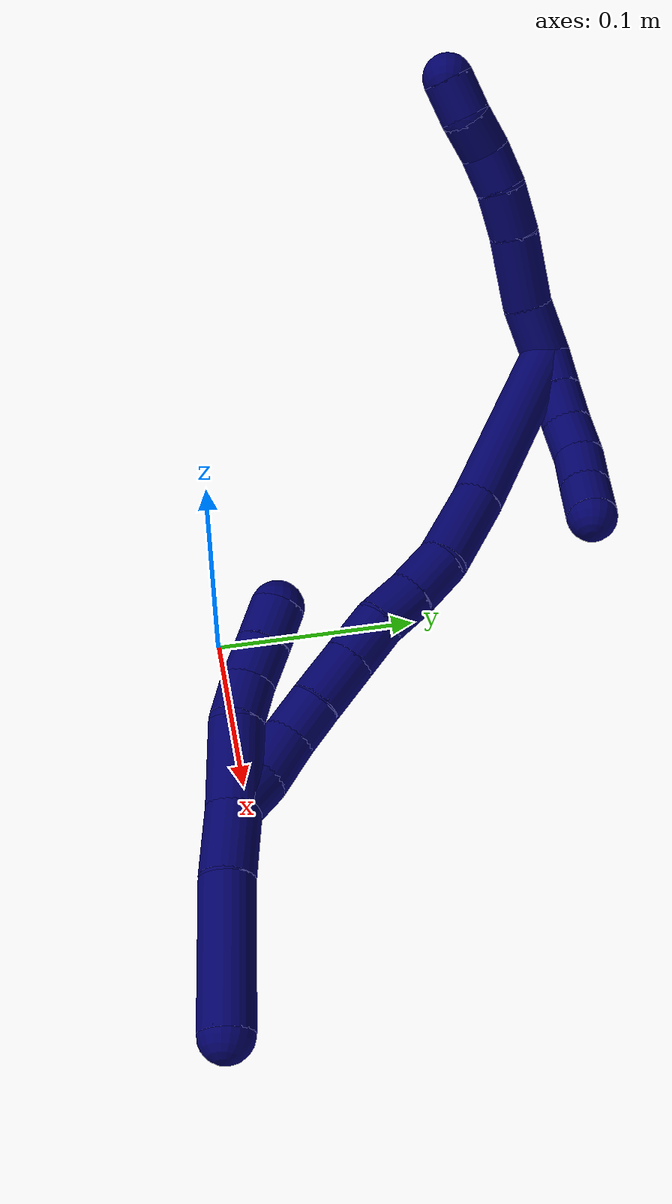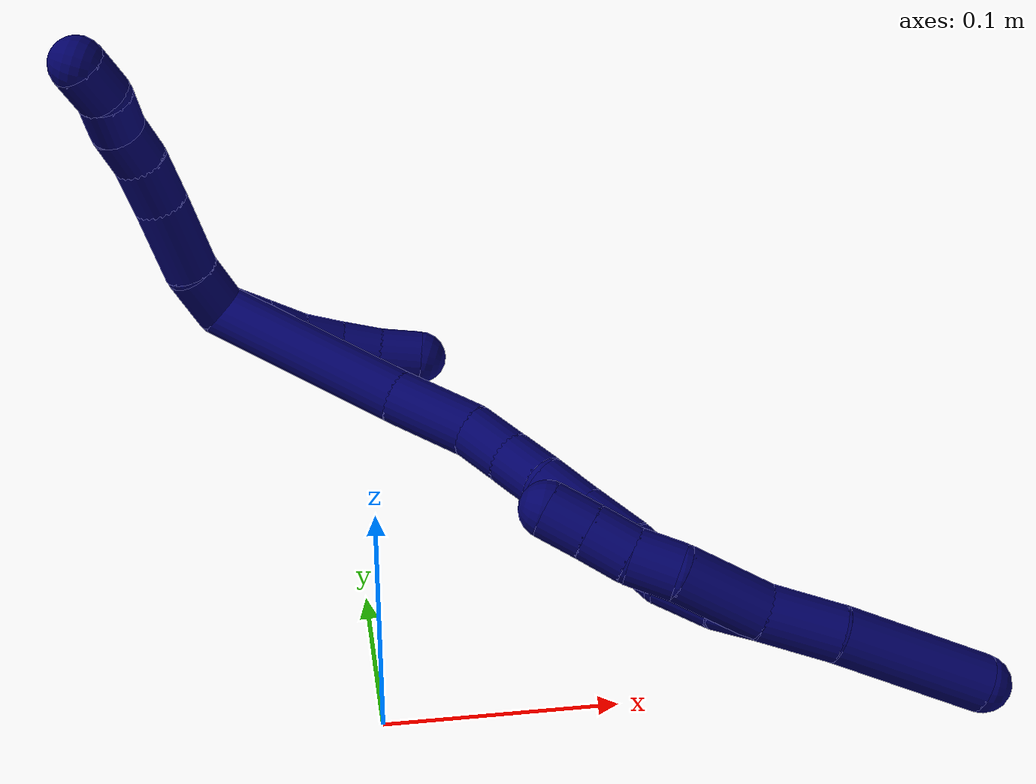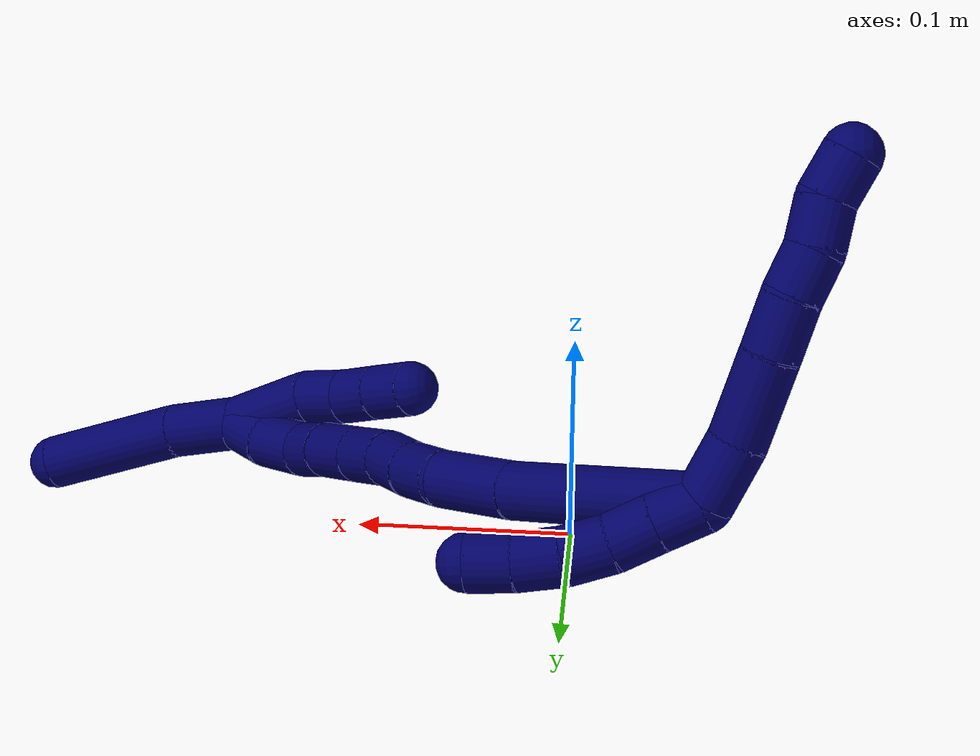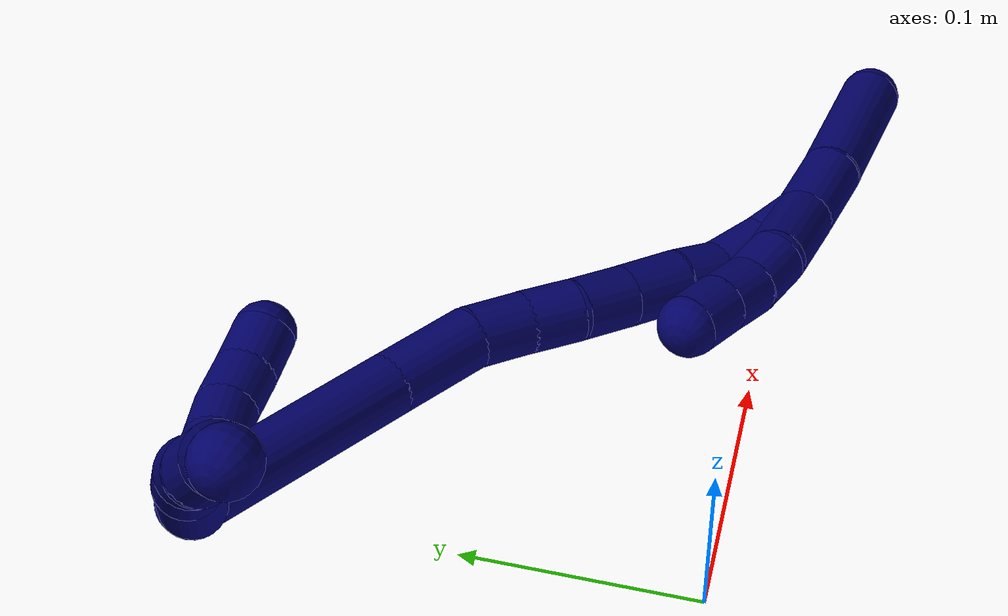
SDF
<sdf version="1.7">
 <world name="default">
  <model name="7">
   <static>0</static>
   <link name="7">
    <collision name="collision-cylinder-e_1_2_8">
     <pose>0.009713 0.005744 0.00833 -0.603705 0.764953 -0.24922</pose>
     <geometry><cylinder><radius>0.0125</radius><length>0.028051</length></cylinder></geometry>
     <surface>
      <friction><ode><mu>1.16</mu><mu2>1.16</mu2><slip1>0</slip1><slip2>0</slip2></ode></friction>
      <contact><ode><kp>1e+06</kp><kd>1</kd><max_vel>0</max_vel><min_depth>0.001</min_depth></ode></contact>
     </surface>
    </collision>
    <visual name="visual-cylinder-e_1_2_8">
     <pose>0.009713 0.005744 0.00833 -0.603705 0.764953 -0.24922</pose>
     <geometry><cylinder><radius>0.0125</radius><length>0.028051</length></cylinder></geometry>
     <material><ambient>0.003922 0 0.403922 1</ambient></material>
    </visual>
    <collision name="collision-cylinder-e_2_8_9">
     <pose>0.0312 0.022656 0.026138 -0.867028 0.677076 -0.323113</pose>
     <geometry><cylinder><radius>0.0125</radius><length>0.037589</length></cylinder></geometry>
     <surface>
      <friction><ode><mu>1.16</mu><mu2>1.16</mu2><slip1>0</slip1><slip2>0</slip2></ode></friction>
      <contact><ode><kp>1e+06</kp><kd>1</kd><max_vel>0</max_vel><min_depth>0.001</min_depth></ode></contact>
     </surface>
    </collision>
    <visual name="visual-cylinder-e_2_8_9">
     <pose>0.0312 0.022656 0.026138 -0.867028 0.677076 -0.323113</pose>
     <geometry><cylinder><radius>0.0125</radius><length>0.037589</length></cylinder></geometry>
     <material><ambient>0.003922 0 0.403922 1</ambient></material>
    </visual>
    <collision name="collision-cylinder-e_3_9_10">
     <pose>0.051324 0.040353 0.041458 -0.840909 0.761336 -0.354115</pose>
     <geometry><cylinder><radius>0.0125</radius><length>0.024201</length></cylinder></geometry>
     <surface>
      <friction><ode><mu>1.16</mu><mu2>1.16</mu2><slip1>0</slip1><slip2>0</slip2></ode></friction>
      <contact><ode><kp>1e+06</kp><kd>1</kd><max_vel>0</max_vel><min_depth>0.001</min_depth></ode></contact>
     </surface>
    </collision>
    <visual name="visual-cylinder-e_3_9_10">
     <pose>0.051324 0.040353 0.041458 -0.840909 0.761336 -0.354115</pose>
     <geometry><cylinder><radius>0.0125</radius><length>0.024201</length></cylinder></geometry>
     <material><ambient>0.003922 0 0.403922 1</ambient></material>
    </visual>
    <collision name="collision-cylinder-e_4_10_11">
     <pose>0.067202 0.050828 0.052674 -0.633346 0.84604 -0.292949</pose>
     <geometry><cylinder><radius>0.0125</radius><length>0.020117</length></cylinder></geometry>
     <surface>
      <friction><ode><mu>1.16</mu><mu2>1.16</mu2><slip1>0</slip1><slip2>0</slip2></ode></friction>
      <contact><ode><kp>1e+06</kp><kd>1</kd><max_vel>0</max_vel><min_depth>0.001</min_depth></ode></contact>
     </surface>
    </collision>
    <visual name="visual-cylinder-e_4_10_11">
     <pose>0.067202 0.050828 0.052674 -0.633346 0.84604 -0.292949</pose>
     <geometry><cylinder><radius>0.0125</radius><length>0.020117</length></cylinder></geometry>
     <material><ambient>0.003922 0 0.403922 1</ambient></material>
    </visual>
    <collision name="collision-cylinder-e_5_11_12">
     <pose>0.083192 0.05909 0.061209 -0.938822 1.00699 -0.54491</pose>
     <geometry><cylinder><radius>0.0125</radius><length>0.020017</length></cylinder></geometry>
     <surface>
      <friction><ode><mu>1.16</mu><mu2>1.16</mu2><slip1>0</slip1><slip2>0</slip2></ode></friction>
      <contact><ode><kp>1e+06</kp><kd>1</kd><max_vel>0</max_vel><min_depth>0.001</min_depth></ode></contact>
     </surface>
    </collision>
    <visual name="visual-cylinder-e_5_11_12">
     <pose>0.083192 0.05909 0.061209 -0.938822 1.00699 -0.54491</pose>
     <geometry><cylinder><radius>0.0125</radius><length>0.020017</length></cylinder></geometry>
     <material><ambient>0.003922 0 0.403922 1</ambient></material>
    </visual>
    <collision name="collision-cylinder-e_6_12_6">
     <pose>0.099051 0.066744 0.070229 -0.517821 0.831656 -0.232851</pose>
     <geometry><cylinder><radius>0.0125</radius><length>0.020025</length></cylinder></geometry>
     <surface>
      <friction><ode><mu>1.16</mu><mu2>1.16</mu2><slip1>0</slip1><slip2>0</slip2></ode></friction>
      <contact><ode><kp>1e+06</kp><kd>1</kd><max_vel>0</max_vel><min_depth>0.001</min_depth></ode></contact>
     </surface>
    </collision>
    <visual name="visual-cylinder-e_6_12_6">
     <pose>0.099051 0.066744 0.070229 -0.517821 0.831656 -0.232851</pose>
     <geometry><cylinder><radius>0.0125</radius><length>0.020025</length></cylinder></geometry>
     <material><ambient>0.003922 0 0.403922 1</ambient></material>
    </visual>
    <collision name="collision-cylinder-e_1_2_13">
     <pose>-0.003244 -0.000316 -0.009454 3.10821 -0.3304 -2.942</pose>
     <geometry><cylinder><radius>0.0125</radius><length>0.02</length></cylinder></geometry>
     <surface>
      <friction><ode><mu>1.16</mu><mu2>1.16</mu2><slip1>0</slip1><slip2>0</slip2></ode></friction>
      <contact><ode><kp>1e+06</kp><kd>1</kd><max_vel>0</max_vel><min_depth>0.001</min_depth></ode></contact>
     </surface>
    </collision>
    <visual name="visual-cylinder-e_1_2_13">
     <pose>-0.003244 -0.000316 -0.009454 3.10821 -0.3304 -2.942</pose>
     <geometry><cylinder><radius>0.0125</radius><length>0.02</length></cylinder></geometry>
     <material><ambient>0.003922 0 0.403922 1</ambient></material>
    </visual>
    <collision name="collision-cylinder-e_2_13_14">
     <pose>-0.009949 -0.000967 -0.028284 3.1058 -0.353373 -2.94175</pose>
     <geometry><cylinder><radius>0.0125</radius><length>0.02</length></cylinder></geometry>
     <surface>
      <friction><ode><mu>1.16</mu><mu2>1.16</mu2><slip1>0</slip1><slip2>0</slip2></ode></friction>
      <contact><ode><kp>1e+06</kp><kd>1</kd><max_vel>0</max_vel><min_depth>0.001</min_depth></ode></contact>
     </surface>
    </collision>
    <visual name="visual-cylinder-e_2_13_14">
     <pose>-0.009949 -0.000967 -0.028284 3.1058 -0.353373 -2.94175</pose>
     <geometry><cylinder><radius>0.0125</radius><length>0.02</length></cylinder></geometry>
     <material><ambient>0.003922 0 0.403922 1</ambient></material>
    </visual>
    <collision name="collision-cylinder-e_3_14_15">
     <pose>-0.016045 -0.000183 -0.047241 -3.02519 -0.266659 2.32197</pose>
     <geometry><cylinder><radius>0.0125</radius><length>0.02</length></cylinder></geometry>
     <surface>
      <friction><ode><mu>1.16</mu><mu2>1.16</mu2><slip1>0</slip1><slip2>0</slip2></ode></friction>
      <contact><ode><kp>1e+06</kp><kd>1</kd><max_vel>0</max_vel><min_depth>0.001</min_depth></ode></contact>
     </surface>
    </collision>
    <visual name="visual-cylinder-e_3_14_15">
     <pose>-0.016045 -0.000183 -0.047241 -3.02519 -0.266659 2.32197</pose>
     <geometry><cylinder><radius>0.0125</radius><length>0.02</length></cylinder></geometry>
     <material><ambient>0.003922 0 0.403922 1</ambient></material>
    </visual>
    <collision name="collision-cylinder-e_4_15_16">
     <pose>-0.019554 0.002155 -0.06671 -3.01911 -0.087515 1.24019</pose>
     <geometry><cylinder><radius>0.0125</radius><length>0.02</length></cylinder></geometry>
     <surface>
      <friction><ode><mu>1.16</mu><mu2>1.16</mu2><slip1>0</slip1><slip2>0</slip2></ode></friction>
      <contact><ode><kp>1e+06</kp><kd>1</kd><max_vel>0</max_vel><min_depth>0.001</min_depth></ode></contact>
     </surface>
    </collision>
    <visual name="visual-cylinder-e_4_15_16">
     <pose>-0.019554 0.002155 -0.06671 -3.01911 -0.087515 1.24019</pose>
     <geometry><cylinder><radius>0.0125</radius><length>0.02</length></cylinder></geometry>
     <material><ambient>0.003922 0 0.403922 1</ambient></material>
    </visual>
    <collision name="collision-cylinder-e_5_16_5">
     <pose>-0.020685 0.005523 -0.086359 -2.92476 -0.02575 0.235493</pose>
     <geometry><cylinder><radius>0.0125</radius><length>0.02</length></cylinder></geometry>
     <surface>
      <friction><ode><mu>1.16</mu><mu2>1.16</mu2><slip1>0</slip1><slip2>0</slip2></ode></friction>
      <contact><ode><kp>1e+06</kp><kd>1</kd><max_vel>0</max_vel><min_depth>0.001</min_depth></ode></contact>
     </surface>
    </collision>
    <visual name="visual-cylinder-e_5_16_5">
     <pose>-0.020685 0.005523 -0.086359 -2.92476 -0.02575 0.235493</pose>
     <geometry><cylinder><radius>0.0125</radius><length>0.02</length></cylinder></geometry>
     <material><ambient>0.003922 0 0.403922 1</ambient></material>
    </visual>
    <collision name="collision-cylinder-e_1_2_17">
     <pose>0.014129 -0.009377 -0.045794 2.93963 0.293528 1.93981</pose>
     <geometry><cylinder><radius>0.0125</radius><length>0.097665</length></cylinder></geometry>
     <surface>
      <friction><ode><mu>1.16</mu><mu2>1.16</mu2><slip1>0</slip1><slip2>0</slip2></ode></friction>
      <contact><ode><kp>1e+06</kp><kd>1</kd><max_vel>0</max_vel><min_depth>0.001</min_depth></ode></contact>
     </surface>
    </collision>
    <visual name="visual-cylinder-e_1_2_17">
     <pose>0.014129 -0.009377 -0.045794 2.93963 0.293528 1.93981</pose>
     <geometry><cylinder><radius>0.0125</radius><length>0.097665</length></cylinder></geometry>
     <material><ambient>0.003922 0 0.403922 1</ambient></material>
    </visual>
    <collision name="collision-cylinder-e_2_17_18">
     <pose>0.035503 -0.022073 -0.110095 2.96408 0.367812 2.24913</pose>
     <geometry><cylinder><radius>0.0125</radius><length>0.0403</length></cylinder></geometry>
     <surface>
      <friction><ode><mu>1.16</mu><mu2>1.16</mu2><slip1>0</slip1><slip2>0</slip2></ode></friction>
      <contact><ode><kp>1e+06</kp><kd>1</kd><max_vel>0</max_vel><min_depth>0.001</min_depth></ode></contact>
     </surface>
    </collision>
    <visual name="visual-cylinder-e_2_17_18">
     <pose>0.035503 -0.022073 -0.110095 2.96408 0.367812 2.24913</pose>
     <geometry><cylinder><radius>0.0125</radius><length>0.0403</length></cylinder></geometry>
     <material><ambient>0.003922 0 0.403922 1</ambient></material>
    </visual>
    <collision name="collision-cylinder-e_3_18_19">
     <pose>0.048623 -0.029386 -0.138161 2.74593 0.515793 1.84192</pose>
     <geometry><cylinder><radius>0.0125</radius><length>0.023819</length></cylinder></geometry>
     <surface>
      <friction><ode><mu>1.16</mu><mu2>1.16</mu2><slip1>0</slip1><slip2>0</slip2></ode></friction>
      <contact><ode><kp>1e+06</kp><kd>1</kd><max_vel>0</max_vel><min_depth>0.001</min_depth></ode></contact>
     </surface>
    </collision>
    <visual name="visual-cylinder-e_3_18_19">
     <pose>0.048623 -0.029386 -0.138161 2.74593 0.515793 1.84192</pose>
     <geometry><cylinder><radius>0.0125</radius><length>0.023819</length></cylinder></geometry>
     <material><ambient>0.003922 0 0.403922 1</ambient></material>
    </visual>
    <collision name="collision-cylinder-e_4_19_20">
     <pose>0.060713 -0.036937 -0.15589 2.73086 0.60918 1.97124</pose>
     <geometry><cylinder><radius>0.0125</radius><length>0.02173</length></cylinder></geometry>
     <surface>
      <friction><ode><mu>1.16</mu><mu2>1.16</mu2><slip1>0</slip1><slip2>0</slip2></ode></friction>
      <contact><ode><kp>1e+06</kp><kd>1</kd><max_vel>0</max_vel><min_depth>0.001</min_depth></ode></contact>
     </surface>
    </collision>
    <visual name="visual-cylinder-e_4_19_20">
     <pose>0.060713 -0.036937 -0.15589 2.73086 0.60918 1.97124</pose>
     <geometry><cylinder><radius>0.0125</radius><length>0.02173</length></cylinder></geometry>
     <material><ambient>0.003922 0 0.403922 1</ambient></material>
    </visual>
    <collision name="collision-cylinder-e_5_20_21">
     <pose>0.071829 -0.044786 -0.173873 2.72937 0.428981 1.61183</pose>
     <geometry><cylinder><radius>0.0125</radius><length>0.023557</length></cylinder></geometry>
     <surface>
      <friction><ode><mu>1.16</mu><mu2>1.16</mu2><slip1>0</slip1><slip2>0</slip2></ode></friction>
      <contact><ode><kp>1e+06</kp><kd>1</kd><max_vel>0</max_vel><min_depth>0.001</min_depth></ode></contact>
     </surface>
    </collision>
    <visual name="visual-cylinder-e_5_20_21">
     <pose>0.071829 -0.044786 -0.173873 2.72937 0.428981 1.61183</pose>
     <geometry><cylinder><radius>0.0125</radius><length>0.023557</length></cylinder></geometry>
     <material><ambient>0.003922 0 0.403922 1</ambient></material>
    </visual>
    <collision name="collision-cylinder-e_6_21_22">
     <pose>0.082225 -0.053582 -0.194656 2.75196 0.43404 1.6816</pose>
     <geometry><cylinder><radius>0.0125</radius><length>0.026139</length></cylinder></geometry>
     <surface>
      <friction><ode><mu>1.16</mu><mu2>1.16</mu2><slip1>0</slip1><slip2>0</slip2></ode></friction>
      <contact><ode><kp>1e+06</kp><kd>1</kd><max_vel>0</max_vel><min_depth>0.001</min_depth></ode></contact>
     </surface>
    </collision>
    <visual name="visual-cylinder-e_6_21_22">
     <pose>0.082225 -0.053582 -0.194656 2.75196 0.43404 1.6816</pose>
     <geometry><cylinder><radius>0.0125</radius><length>0.026139</length></cylinder></geometry>
     <material><ambient>0.003922 0 0.403922 1</ambient></material>
    </visual>
    <collision name="collision-cylinder-e_7_22_23">
     <pose>0.091563 -0.062415 -0.214019 2.66544 0.38635 1.35685</pose>
     <geometry><cylinder><radius>0.0125</radius><length>0.020394</length></cylinder></geometry>
     <surface>
      <friction><ode><mu>1.16</mu><mu2>1.16</mu2><slip1>0</slip1><slip2>0</slip2></ode></friction>
      <contact><ode><kp>1e+06</kp><kd>1</kd><max_vel>0</max_vel><min_depth>0.001</min_depth></ode></contact>
     </surface>
    </collision>
    <visual name="visual-cylinder-e_7_22_23">
     <pose>0.091563 -0.062415 -0.214019 2.66544 0.38635 1.35685</pose>
     <geometry><cylinder><radius>0.0125</radius><length>0.020394</length></cylinder></geometry>
     <material><ambient>0.003922 0 0.403922 1</ambient></material>
    </visual>
    <collision name="collision-cylinder-e_8_23_24">
     <pose>0.100643 -0.068629 -0.233874 2.97858 0.423694 2.41565</pose>
     <geometry><cylinder><radius>0.0125</radius><length>0.025481</length></cylinder></geometry>
     <surface>
      <friction><ode><mu>1.16</mu><mu2>1.16</mu2><slip1>0</slip1><slip2>0</slip2></ode></friction>
      <contact><ode><kp>1e+06</kp><kd>1</kd><max_vel>0</max_vel><min_depth>0.001</min_depth></ode></contact>
     </surface>
    </collision>
    <visual name="visual-cylinder-e_8_23_24">
     <pose>0.100643 -0.068629 -0.233874 2.97858 0.423694 2.41565</pose>
     <geometry><cylinder><radius>0.0125</radius><length>0.025481</length></cylinder></geometry>
     <material><ambient>0.003922 0 0.403922 1</ambient></material>
    </visual>
    <collision name="collision-cylinder-e_9_24_1">
     <pose>0.111738 -0.070329 -0.253996 -3.12021 0.594416 -3.07179</pose>
     <geometry><cylinder><radius>0.0125</radius><length>0.020916</length></cylinder></geometry>
     <surface>
      <friction><ode><mu>1.16</mu><mu2>1.16</mu2><slip1>0</slip1><slip2>0</slip2></ode></friction>
      <contact><ode><kp>1e+06</kp><kd>1</kd><max_vel>0</max_vel><min_depth>0.001</min_depth></ode></contact>
     </surface>
    </collision>
    <visual name="visual-cylinder-e_9_24_1">
     <pose>0.111738 -0.070329 -0.253996 -3.12021 0.594416 -3.07179</pose>
     <geometry><cylinder><radius>0.0125</radius><length>0.020916</length></cylinder></geometry>
     <material><ambient>0.003922 0 0.403922 1</ambient></material>
    </visual>
    <collision name="collision-cylinder-e_1_1_25">
     <pose>0.12026 -0.067253 -0.243342 -0.148521 0.135605 -0.010104</pose>
     <geometry><cylinder><radius>0.0125</radius><length>0.039425</length></cylinder></geometry>
     <surface>
      <friction><ode><mu>1.16</mu><mu2>1.16</mu2><slip1>0</slip1><slip2>0</slip2></ode></friction>
      <contact><ode><kp>1e+06</kp><kd>1</kd><max_vel>0</max_vel><min_depth>0.001</min_depth></ode></contact>
     </surface>
    </collision>
    <visual name="visual-cylinder-e_1_1_25">
     <pose>0.12026 -0.067253 -0.243342 -0.148521 0.135605 -0.010104</pose>
     <geometry><cylinder><radius>0.0125</radius><length>0.039425</length></cylinder></geometry>
     <material><ambient>0.003922 0 0.403922 1</ambient></material>
    </visual>
    <collision name="collision-cylinder-e_2_25_26">
     <pose>0.121315 -0.063723 -0.213911 -0.063189 -0.157528 0.004989</pose>
     <geometry><cylinder><radius>0.0125</radius><length>0.020523</length></cylinder></geometry>
     <surface>
      <friction><ode><mu>1.16</mu><mu2>1.16</mu2><slip1>0</slip1><slip2>0</slip2></ode></friction>
      <contact><ode><kp>1e+06</kp><kd>1</kd><max_vel>0</max_vel><min_depth>0.001</min_depth></ode></contact>
     </surface>
    </collision>
    <visual name="visual-cylinder-e_2_25_26">
     <pose>0.121315 -0.063723 -0.213911 -0.063189 -0.157528 0.004989</pose>
     <geometry><cylinder><radius>0.0125</radius><length>0.020523</length></cylinder></geometry>
     <material><ambient>0.003922 0 0.403922 1</ambient></material>
    </visual>
    <collision name="collision-cylinder-e_3_26_27">
     <pose>0.117939 -0.060716 -0.194226 -0.242445 -0.177253 0.021649</pose>
     <geometry><cylinder><radius>0.0125</radius><length>0.020033</length></cylinder></geometry>
     <surface>
      <friction><ode><mu>1.16</mu><mu2>1.16</mu2><slip1>0</slip1><slip2>0</slip2></ode></friction>
      <contact><ode><kp>1e+06</kp><kd>1</kd><max_vel>0</max_vel><min_depth>0.001</min_depth></ode></contact>
     </surface>
    </collision>
    <visual name="visual-cylinder-e_3_26_27">
     <pose>0.117939 -0.060716 -0.194226 -0.242445 -0.177253 0.021649</pose>
     <geometry><cylinder><radius>0.0125</radius><length>0.020033</length></cylinder></geometry>
     <material><ambient>0.003922 0 0.403922 1</ambient></material>
    </visual>
    <collision name="collision-cylinder-e_4_27_4">
     <pose>0.114455 -0.056205 -0.175029 -0.219162 -0.172511 0.019027</pose>
     <geometry><cylinder><radius>0.0125</radius><length>0.020019</length></cylinder></geometry>
     <surface>
      <friction><ode><mu>1.16</mu><mu2>1.16</mu2><slip1>0</slip1><slip2>0</slip2></ode></friction>
      <contact><ode><kp>1e+06</kp><kd>1</kd><max_vel>0</max_vel><min_depth>0.001</min_depth></ode></contact>
     </surface>
    </collision>
    <visual name="visual-cylinder-e_4_27_4">
     <pose>0.114455 -0.056205 -0.175029 -0.219162 -0.172511 0.019027</pose>
     <geometry><cylinder><radius>0.0125</radius><length>0.020019</length></cylinder></geometry>
     <material><ambient>0.003922 0 0.403922 1</ambient></material>
    </visual>
    <collision name="collision-cylinder-e_1_1_28">
     <pose>0.117661 -0.070102 -0.279371 -3.13914 0.003976 -2.03593</pose>
     <geometry><cylinder><radius>0.0125</radius><length>0.033427</length></cylinder></geometry>
     <surface>
      <friction><ode><mu>1.16</mu><mu2>1.16</mu2><slip1>0</slip1><slip2>0</slip2></ode></friction>
      <contact><ode><kp>1e+06</kp><kd>1</kd><max_vel>0</max_vel><min_depth>0.001</min_depth></ode></contact>
     </surface>
    </collision>
    <visual name="visual-cylinder-e_1_1_28">
     <pose>0.117661 -0.070102 -0.279371 -3.13914 0.003976 -2.03593</pose>
     <geometry><cylinder><radius>0.0125</radius><length>0.033427</length></cylinder></geometry>
     <material><ambient>0.003922 0 0.403922 1</ambient></material>
    </visual>
    <collision name="collision-cylinder-e_2_28_3">
     <pose>0.114033 -0.071448 -0.329136 3.09966 -0.111227 -2.42108</pose>
     <geometry><cylinder><radius>0.0125</radius><length>0.066573</length></cylinder></geometry>
     <surface>
      <friction><ode><mu>1.16</mu><mu2>1.16</mu2><slip1>0</slip1><slip2>0</slip2></ode></friction>
      <contact><ode><kp>1e+06</kp><kd>1</kd><max_vel>0</max_vel><min_depth>0.001</min_depth></ode></contact>
     </surface>
    </collision>
    <visual name="visual-cylinder-e_2_28_3">
     <pose>0.114033 -0.071448 -0.329136 3.09966 -0.111227 -2.42108</pose>
     <geometry><cylinder><radius>0.0125</radius><length>0.066573</length></cylinder></geometry>
     <material><ambient>0.003922 0 0.403922 1</ambient></material>
    </visual>
    <collision name="collision-sphere-3">
     <pose>0.110338 -0.072835 -0.362188 0 -0 0</pose>
     <geometry><sphere><radius>0.0125</radius></sphere></geometry>
     <surface>
      <friction><ode><mu>1.16</mu><mu2>1.16</mu2><slip1>0</slip1><slip2>0</slip2></ode></friction>
      <contact><ode><kp>1e+06</kp><kd>1</kd><max_vel>0</max_vel><min_depth>0.001</min_depth></ode></contact>
     </surface>
    </collision>
    <visual name="visual-sphere-3">
     <pose>0.110338 -0.072835 -0.362188 0 -0 0</pose>
     <geometry><sphere><radius>0.0125</radius></sphere></geometry>
     <material><ambient>0.003922 0 0.403922 1</ambient></material>
    </visual>
    <collision name="collision-sphere-28">
     <pose>0.117728 -0.070061 -0.296085 0 -0 0</pose>
     <geometry><sphere><radius>0.0125</radius></sphere></geometry>
     <surface>
      <friction><ode><mu>1.16</mu><mu2>1.16</mu2><slip1>0</slip1><slip2>0</slip2></ode></friction>
      <contact><ode><kp>1e+06</kp><kd>1</kd><max_vel>0</max_vel><min_depth>0.001</min_depth></ode></contact>
     </surface>
    </collision>
    <visual name="visual-sphere-28">
     <pose>0.117728 -0.070061 -0.296085 0 -0 0</pose>
     <geometry><sphere><radius>0.0125</radius></sphere></geometry>
     <material><ambient>0.003922 0 0.403922 1</ambient></material>
    </visual>
    <collision name="collision-sphere-4">
     <pose>0.112737 -0.054061 -0.165404 0 -0 0</pose>
     <geometry><sphere><radius>0.0125</radius></sphere></geometry>
     <surface>
      <friction><ode><mu>1.16</mu><mu2>1.16</mu2><slip1>0</slip1><slip2>0</slip2></ode></friction>
      <contact><ode><kp>1e+06</kp><kd>1</kd><max_vel>0</max_vel><min_depth>0.001</min_depth></ode></contact>
     </surface>
    </collision>
    <visual name="visual-sphere-4">
     <pose>0.112737 -0.054061 -0.165404 0 -0 0</pose>
     <geometry><sphere><radius>0.0125</radius></sphere></geometry>
     <material><ambient>0.003922 0 0.403922 1</ambient></material>
    </visual>
    <collision name="collision-sphere-27">
     <pose>0.116173 -0.058349 -0.184654 0 -0 0</pose>
     <geometry><sphere><radius>0.0125</radius></sphere></geometry>
     <surface>
      <friction><ode><mu>1.16</mu><mu2>1.16</mu2><slip1>0</slip1><slip2>0</slip2></ode></friction>
      <contact><ode><kp>1e+06</kp><kd>1</kd><max_vel>0</max_vel><min_depth>0.001</min_depth></ode></contact>
     </surface>
    </collision>
    <visual name="visual-sphere-27">
     <pose>0.116173 -0.058349 -0.184654 0 -0 0</pose>
     <geometry><sphere><radius>0.0125</radius></sphere></geometry>
     <material><ambient>0.003922 0 0.403922 1</ambient></material>
    </visual>
    <collision name="collision-sphere-26">
     <pose>0.119705 -0.063083 -0.203797 0 -0 0</pose>
     <geometry><sphere><radius>0.0125</radius></sphere></geometry>
     <surface>
      <friction><ode><mu>1.16</mu><mu2>1.16</mu2><slip1>0</slip1><slip2>0</slip2></ode></friction>
      <contact><ode><kp>1e+06</kp><kd>1</kd><max_vel>0</max_vel><min_depth>0.001</min_depth></ode></contact>
     </surface>
    </collision>
    <visual name="visual-sphere-26">
     <pose>0.119705 -0.063083 -0.203797 0 -0 0</pose>
     <geometry><sphere><radius>0.0125</radius></sphere></geometry>
     <material><ambient>0.003922 0 0.403922 1</ambient></material>
    </visual>
    <collision name="collision-sphere-25">
     <pose>0.122925 -0.064363 -0.224025 0 -0 0</pose>
     <geometry><sphere><radius>0.0125</radius></sphere></geometry>
     <surface>
      <friction><ode><mu>1.16</mu><mu2>1.16</mu2><slip1>0</slip1><slip2>0</slip2></ode></friction>
      <contact><ode><kp>1e+06</kp><kd>1</kd><max_vel>0</max_vel><min_depth>0.001</min_depth></ode></contact>
     </surface>
    </collision>
    <visual name="visual-sphere-25">
     <pose>0.122925 -0.064363 -0.224025 0 -0 0</pose>
     <geometry><sphere><radius>0.0125</radius></sphere></geometry>
     <material><ambient>0.003922 0 0.403922 1</ambient></material>
    </visual>
    <collision name="collision-sphere-1">
     <pose>0.117595 -0.070143 -0.262658 0 -0 0</pose>
     <geometry><sphere><radius>0.0125</radius></sphere></geometry>
     <surface>
      <friction><ode><mu>1.16</mu><mu2>1.16</mu2><slip1>0</slip1><slip2>0</slip2></ode></friction>
      <contact><ode><kp>1e+06</kp><kd>1</kd><max_vel>0</max_vel><min_depth>0.001</min_depth></ode></contact>
     </surface>
    </collision>
    <visual name="visual-sphere-1">
     <pose>0.117595 -0.070143 -0.262658 0 -0 0</pose>
     <geometry><sphere><radius>0.0125</radius></sphere></geometry>
     <material><ambient>0.003922 0 0.403922 1</ambient></material>
    </visual>
    <collision name="collision-sphere-24">
     <pose>0.105881 -0.070514 -0.245334 0 -0 0</pose>
     <geometry><sphere><radius>0.0125</radius></sphere></geometry>
     <surface>
      <friction><ode><mu>1.16</mu><mu2>1.16</mu2><slip1>0</slip1><slip2>0</slip2></ode></friction>
      <contact><ode><kp>1e+06</kp><kd>1</kd><max_vel>0</max_vel><min_depth>0.001</min_depth></ode></contact>
     </surface>
    </collision>
    <visual name="visual-sphere-24">
     <pose>0.105881 -0.070514 -0.245334 0 -0 0</pose>
     <geometry><sphere><radius>0.0125</radius></sphere></geometry>
     <material><ambient>0.003922 0 0.403922 1</ambient></material>
    </visual>
    <collision name="collision-sphere-23">
     <pose>0.095405 -0.066744 -0.222414 0 -0 0</pose>
     <geometry><sphere><radius>0.0125</radius></sphere></geometry>
     <surface>
      <friction><ode><mu>1.16</mu><mu2>1.16</mu2><slip1>0</slip1><slip2>0</slip2></ode></friction>
      <contact><ode><kp>1e+06</kp><kd>1</kd><max_vel>0</max_vel><min_depth>0.001</min_depth></ode></contact>
     </surface>
    </collision>
    <visual name="visual-sphere-23">
     <pose>0.095405 -0.066744 -0.222414 0 -0 0</pose>
     <geometry><sphere><radius>0.0125</radius></sphere></geometry>
     <material><ambient>0.003922 0 0.403922 1</ambient></material>
    </visual>
    <collision name="collision-sphere-22">
     <pose>0.087721 -0.058086 -0.205625 0 -0 0</pose>
     <geometry><sphere><radius>0.0125</radius></sphere></geometry>
     <surface>
      <friction><ode><mu>1.16</mu><mu2>1.16</mu2><slip1>0</slip1><slip2>0</slip2></ode></friction>
      <contact><ode><kp>1e+06</kp><kd>1</kd><max_vel>0</max_vel><min_depth>0.001</min_depth></ode></contact>
     </surface>
    </collision>
    <visual name="visual-sphere-22">
     <pose>0.087721 -0.058086 -0.205625 0 -0 0</pose>
     <geometry><sphere><radius>0.0125</radius></sphere></geometry>
     <material><ambient>0.003922 0 0.403922 1</ambient></material>
    </visual>
    <collision name="collision-sphere-21">
     <pose>0.076728 -0.049078 -0.183687 0 -0 0</pose>
     <geometry><sphere><radius>0.0125</radius></sphere></geometry>
     <surface>
      <friction><ode><mu>1.16</mu><mu2>1.16</mu2><slip1>0</slip1><slip2>0</slip2></ode></friction>
      <contact><ode><kp>1e+06</kp><kd>1</kd><max_vel>0</max_vel><min_depth>0.001</min_depth></ode></contact>
     </surface>
    </collision>
    <visual name="visual-sphere-21">
     <pose>0.076728 -0.049078 -0.183687 0 -0 0</pose>
     <geometry><sphere><radius>0.0125</radius></sphere></geometry>
     <material><ambient>0.003922 0 0.403922 1</ambient></material>
    </visual>
    <collision name="collision-sphere-12">
     <pose>0.091651 0.063406 0.064368 0 -0 0</pose>
     <geometry><sphere><radius>0.0125</radius></sphere></geometry>
     <surface>
      <friction><ode><mu>1.16</mu><mu2>1.16</mu2><slip1>0</slip1><slip2>0</slip2></ode></friction>
      <contact><ode><kp>1e+06</kp><kd>1</kd><max_vel>0</max_vel><min_depth>0.001</min_depth></ode></contact>
     </surface>
    </collision>
    <visual name="visual-sphere-12">
     <pose>0.091651 0.063406 0.064368 0 -0 0</pose>
     <geometry><sphere><radius>0.0125</radius></sphere></geometry>
     <material><ambient>0.003922 0 0.403922 1</ambient></material>
    </visual>
    <collision name="collision-sphere-11">
     <pose>0.074732 0.054774 0.058049 0 -0 0</pose>
     <geometry><sphere><radius>0.0125</radius></sphere></geometry>
     <surface>
      <friction><ode><mu>1.16</mu><mu2>1.16</mu2><slip1>0</slip1><slip2>0</slip2></ode></friction>
      <contact><ode><kp>1e+06</kp><kd>1</kd><max_vel>0</max_vel><min_depth>0.001</min_depth></ode></contact>
     </surface>
    </collision>
    <visual name="visual-sphere-11">
     <pose>0.074732 0.054774 0.058049 0 -0 0</pose>
     <geometry><sphere><radius>0.0125</radius></sphere></geometry>
     <material><ambient>0.003922 0 0.403922 1</ambient></material>
    </visual>
    <collision name="collision-sphere-10">
     <pose>0.059672 0.046881 0.047299 0 -0 0</pose>
     <geometry><sphere><radius>0.0125</radius></sphere></geometry>
     <surface>
      <friction><ode><mu>1.16</mu><mu2>1.16</mu2><slip1>0</slip1><slip2>0</slip2></ode></friction>
      <contact><ode><kp>1e+06</kp><kd>1</kd><max_vel>0</max_vel><min_depth>0.001</min_depth></ode></contact>
     </surface>
    </collision>
    <visual name="visual-sphere-10">
     <pose>0.059672 0.046881 0.047299 0 -0 0</pose>
     <geometry><sphere><radius>0.0125</radius></sphere></geometry>
     <material><ambient>0.003922 0 0.403922 1</ambient></material>
    </visual>
    <collision name="collision-sphere-9">
     <pose>0.042976 0.033825 0.035617 0 -0 0</pose>
     <geometry><sphere><radius>0.0125</radius></sphere></geometry>
     <surface>
      <friction><ode><mu>1.16</mu><mu2>1.16</mu2><slip1>0</slip1><slip2>0</slip2></ode></friction>
      <contact><ode><kp>1e+06</kp><kd>1</kd><max_vel>0</max_vel><min_depth>0.001</min_depth></ode></contact>
     </surface>
    </collision>
    <visual name="visual-sphere-9">
     <pose>0.042976 0.033825 0.035617 0 -0 0</pose>
     <geometry><sphere><radius>0.0125</radius></sphere></geometry>
     <material><ambient>0.003922 0 0.403922 1</ambient></material>
    </visual>
    <collision name="collision-sphere-2">
     <geometry><sphere><radius>0.0125</radius></sphere></geometry>
     <surface>
      <friction><ode><mu>1.16</mu><mu2>1.16</mu2><slip1>0</slip1><slip2>0</slip2></ode></friction>
      <contact><ode><kp>1e+06</kp><kd>1</kd><max_vel>0</max_vel><min_depth>0.001</min_depth></ode></contact>
     </surface>
    </collision>
    <visual name="visual-sphere-2">
     <geometry><sphere><radius>0.0125</radius></sphere></geometry>
     <material><ambient>0.003922 0 0.403922 1</ambient></material>
    </visual>
    <collision name="collision-sphere-19">
     <pose>0.054497 -0.033379 -0.147721 0 -0 0</pose>
     <geometry><sphere><radius>0.0125</radius></sphere></geometry>
     <surface>
      <friction><ode><mu>1.16</mu><mu2>1.16</mu2><slip1>0</slip1><slip2>0</slip2></ode></friction>
      <contact><ode><kp>1e+06</kp><kd>1</kd><max_vel>0</max_vel><min_depth>0.001</min_depth></ode></contact>
     </surface>
    </collision>
    <visual name="visual-sphere-19">
     <pose>0.054497 -0.033379 -0.147721 0 -0 0</pose>
     <geometry><sphere><radius>0.0125</radius></sphere></geometry>
     <material><ambient>0.003922 0 0.403922 1</ambient></material>
    </visual>
    <collision name="collision-sphere-8">
     <pose>0.019425 0.011488 0.016659 0 -0 0</pose>
     <geometry><sphere><radius>0.0125</radius></sphere></geometry>
     <surface>
      <friction><ode><mu>1.16</mu><mu2>1.16</mu2><slip1>0</slip1><slip2>0</slip2></ode></friction>
      <contact><ode><kp>1e+06</kp><kd>1</kd><max_vel>0</max_vel><min_depth>0.001</min_depth></ode></contact>
     </surface>
    </collision>
    <visual name="visual-sphere-8">
     <pose>0.019425 0.011488 0.016659 0 -0 0</pose>
     <geometry><sphere><radius>0.0125</radius></sphere></geometry>
     <material><ambient>0.003922 0 0.403922 1</ambient></material>
    </visual>
    <collision name="collision-sphere-6">
     <pose>0.106451 0.070083 0.07609 0 -0 0</pose>
     <geometry><sphere><radius>0.0125</radius></sphere></geometry>
     <surface>
      <friction><ode><mu>1.16</mu><mu2>1.16</mu2><slip1>0</slip1><slip2>0</slip2></ode></friction>
      <contact><ode><kp>1e+06</kp><kd>1</kd><max_vel>0</max_vel><min_depth>0.001</min_depth></ode></contact>
     </surface>
    </collision>
    <visual name="visual-sphere-6">
     <pose>0.106451 0.070083 0.07609 0 -0 0</pose>
     <geometry><sphere><radius>0.0125</radius></sphere></geometry>
     <material><ambient>0.003922 0 0.403922 1</ambient></material>
    </visual>
    <collision name="collision-sphere-13">
     <pose>-0.006488 -0.000631 -0.018908 0 -0 0</pose>
     <geometry><sphere><radius>0.0125</radius></sphere></geometry>
     <surface>
      <friction><ode><mu>1.16</mu><mu2>1.16</mu2><slip1>0</slip1><slip2>0</slip2></ode></friction>
      <contact><ode><kp>1e+06</kp><kd>1</kd><max_vel>0</max_vel><min_depth>0.001</min_depth></ode></contact>
     </surface>
    </collision>
    <visual name="visual-sphere-13">
     <pose>-0.006488 -0.000631 -0.018908 0 -0 0</pose>
     <geometry><sphere><radius>0.0125</radius></sphere></geometry>
     <material><ambient>0.003922 0 0.403922 1</ambient></material>
    </visual>
    <collision name="collision-sphere-14">
     <pose>-0.01341 -0.001303 -0.03766 0 -0 0</pose>
     <geometry><sphere><radius>0.0125</radius></sphere></geometry>
     <surface>
      <friction><ode><mu>1.16</mu><mu2>1.16</mu2><slip1>0</slip1><slip2>0</slip2></ode></friction>
      <contact><ode><kp>1e+06</kp><kd>1</kd><max_vel>0</max_vel><min_depth>0.001</min_depth></ode></contact>
     </surface>
    </collision>
    <visual name="visual-sphere-14">
     <pose>-0.01341 -0.001303 -0.03766 0 -0 0</pose>
     <geometry><sphere><radius>0.0125</radius></sphere></geometry>
     <material><ambient>0.003922 0 0.403922 1</ambient></material>
    </visual>
    <collision name="collision-sphere-15">
     <pose>-0.01868 0.000938 -0.056822 0 -0 0</pose>
     <geometry><sphere><radius>0.0125</radius></sphere></geometry>
     <surface>
      <friction><ode><mu>1.16</mu><mu2>1.16</mu2><slip1>0</slip1><slip2>0</slip2></ode></friction>
      <contact><ode><kp>1e+06</kp><kd>1</kd><max_vel>0</max_vel><min_depth>0.001</min_depth></ode></contact>
     </surface>
    </collision>
    <visual name="visual-sphere-15">
     <pose>-0.01868 0.000938 -0.056822 0 -0 0</pose>
     <geometry><sphere><radius>0.0125</radius></sphere></geometry>
     <material><ambient>0.003922 0 0.403922 1</ambient></material>
    </visual>
    <collision name="collision-sphere-16">
     <pose>-0.020428 0.003372 -0.076597 0 -0 0</pose>
     <geometry><sphere><radius>0.0125</radius></sphere></geometry>
     <surface>
      <friction><ode><mu>1.16</mu><mu2>1.16</mu2><slip1>0</slip1><slip2>0</slip2></ode></friction>
      <contact><ode><kp>1e+06</kp><kd>1</kd><max_vel>0</max_vel><min_depth>0.001</min_depth></ode></contact>
     </surface>
    </collision>
    <visual name="visual-sphere-16">
     <pose>-0.020428 0.003372 -0.076597 0 -0 0</pose>
     <geometry><sphere><radius>0.0125</radius></sphere></geometry>
     <material><ambient>0.003922 0 0.403922 1</ambient></material>
    </visual>
    <collision name="collision-sphere-5">
     <pose>-0.020943 0.007673 -0.096122 0 -0 0</pose>
     <geometry><sphere><radius>0.0125</radius></sphere></geometry>
     <surface>
      <friction><ode><mu>1.16</mu><mu2>1.16</mu2><slip1>0</slip1><slip2>0</slip2></ode></friction>
      <contact><ode><kp>1e+06</kp><kd>1</kd><max_vel>0</max_vel><min_depth>0.001</min_depth></ode></contact>
     </surface>
    </collision>
    <visual name="visual-sphere-5">
     <pose>-0.020943 0.007673 -0.096122 0 -0 0</pose>
     <geometry><sphere><radius>0.0125</radius></sphere></geometry>
     <material><ambient>0.003922 0 0.403922 1</ambient></material>
    </visual>
    <collision name="collision-sphere-17">
     <pose>0.028258 -0.018753 -0.091588 0 -0 0</pose>
     <geometry><sphere><radius>0.0125</radius></sphere></geometry>
     <surface>
      <friction><ode><mu>1.16</mu><mu2>1.16</mu2><slip1>0</slip1><slip2>0</slip2></ode></friction>
      <contact><ode><kp>1e+06</kp><kd>1</kd><max_vel>0</max_vel><min_depth>0.001</min_depth></ode></contact>
     </surface>
    </collision>
    <visual name="visual-sphere-17">
     <pose>0.028258 -0.018753 -0.091588 0 -0 0</pose>
     <geometry><sphere><radius>0.0125</radius></sphere></geometry>
     <material><ambient>0.003922 0 0.403922 1</ambient></material>
    </visual>
    <collision name="collision-sphere-18">
     <pose>0.042748 -0.025393 -0.128601 0 -0 0</pose>
     <geometry><sphere><radius>0.0125</radius></sphere></geometry>
     <surface>
      <friction><ode><mu>1.16</mu><mu2>1.16</mu2><slip1>0</slip1><slip2>0</slip2></ode></friction>
      <contact><ode><kp>1e+06</kp><kd>1</kd><max_vel>0</max_vel><min_depth>0.001</min_depth></ode></contact>
     </surface>
    </collision>
    <visual name="visual-sphere-18">
     <pose>0.042748 -0.025393 -0.128601 0 -0 0</pose>
     <geometry><sphere><radius>0.0125</radius></sphere></geometry>
     <material><ambient>0.003922 0 0.403922 1</ambient></material>
    </visual>
    <collision name="collision-sphere-20">
     <pose>0.06693 -0.040495 -0.164059 0 -0 0</pose>
     <geometry><sphere><radius>0.0125</radius></sphere></geometry>
     <surface>
      <friction><ode><mu>1.16</mu><mu2>1.16</mu2><slip1>0</slip1><slip2>0</slip2></ode></friction>
      <contact><ode><kp>1e+06</kp><kd>1</kd><max_vel>0</max_vel><min_depth>0.001</min_depth></ode></contact>
     </surface>
    </collision>
    <visual name="visual-sphere-20">
     <pose>0.06693 -0.040495 -0.164059 0 -0 0</pose>
     <geometry><sphere><radius>0.0125</radius></sphere></geometry>
     <material><ambient>0.003922 0 0.403922 1</ambient></material>
    </visual>
    <inertial>
     <pose>0.060808 -0.024002 -0.122516 0 -0 0</pose>
     <mass>0.75</mass>
     <inertia>
      <ixx>4.1e-05</ixx>
      <ixy>0</ixy>
      <ixz>0</ixz>
      <iyy>0.000159</iyy>
      <iyz>0</iyz>
      <izz>-4.9e-05</izz>
     </inertia>
    </inertial>
   </link>
   <pose>-0.058504 0.180599 0.11564 1.2381 -0.54344 -1.61824</pose>
  </model>
 </world>
</sdf>
